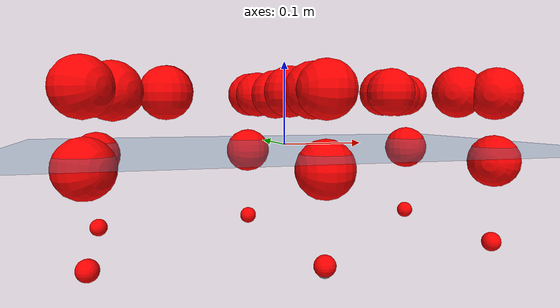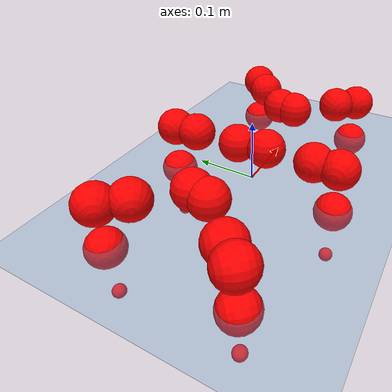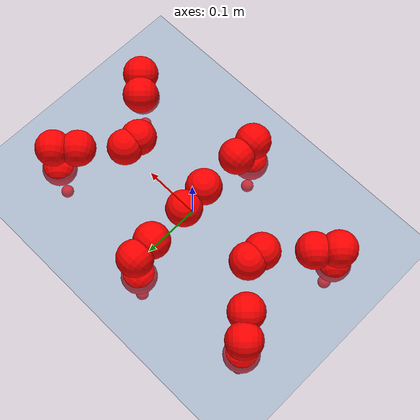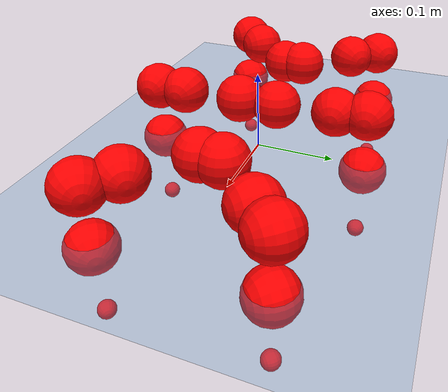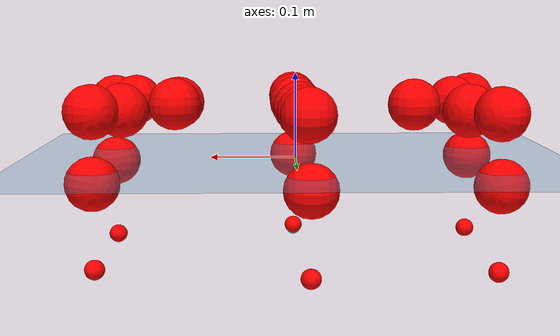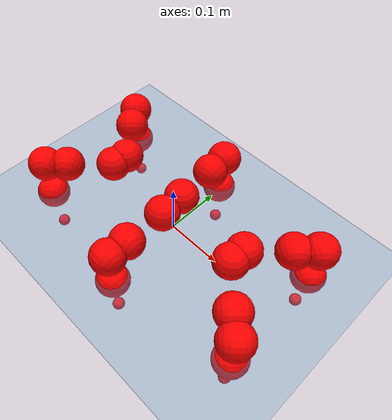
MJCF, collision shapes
<mujoco model="Golem">
  <compiler angle="radian" assetdir="assets" balanceinertia="true" inertiafromgeom="false"/>

  <option timestep="0.005" density="1.2" viscosity="2e-05"/>

  <size nkey="1"/>

  <visual>
    <quality shadowsize="8192"/>
    <map shadowclip="0.5"/>
  </visual>

  <default>
    <default class="/">
      <joint armature="0.01" damping="0.01" frictionloss="0.01"/>
      <geom contype="0" conaffinity="0" group="1" solref="-1000 -80"/>
      <site size="0.01 0.005 0.005" group="5"/>
      <general forcelimited="true" biastype="affine" gainprm="25" biasprm="0 -25 -0.5"/>
      <default class="visual">
        <geom type="mesh" group="2"/>
      </default>
      <default class="collision">
        <geom group="3"/>
      </default>
      <default class="foot">
        <geom size="0.01 0 0" condim="6" group="4" priority="1" solimp="0.015 1 0.01"/>
      </default>
      <default class="reward_collision_sphere">
        <geom group="5" rgba="1 0 0 1"/>
      </default>
    </default>
  </default>

  <asset>
    <texture type="skybox" colorspace="auto" name="//unnamed_texture_0" builtin="gradient" rgb1="0.95 0.95 0.95" rgb2="0.95 0.95 0.95" width="100" height="600"/>
    <texture type="2d" colorspace="auto" name="texplane" builtin="checker" rgb1="0.345 0.575 0.748" rgb2="0.345 0.575 0.748" markrgb="1 1 1" width="512" height="512"/>
    <material name="MatPlane" class="/" texture="texplane" texuniform="true" texrepeat="2 2" specular="0.9"/>
    <mesh name="body" class="/" file="body.stl" scale="0.001 0.001 0.001"/>
    <mesh name="coxa" class="/" file="coxa.stl" scale="0.001 0.001 0.001"/>
    <mesh name="femur" class="/" file="femur.stl" scale="0.001 0.001 0.001"/>
    <mesh name="tibia" class="/" file="tibia.stl" scale="0.001 0.001 0.001"/>
    <mesh name="tarsus" class="/" file="tarsus.stl" scale="0.001 0.001 0.001"/>
  </asset>

  <worldbody>
    <geom name="floor" class="/" size="100 100 0.125" type="plane" group="0" material="MatPlane"/>
    <light name="toplight_shadow" class="/" pos="0 0 5" dir="0.0990148 0.0990148 -0.990148" type="directional" ambient="0.04 0.04 0.04" diffuse="0.55 0.55 0.55" specular="0.12 0.12 0.12"/>
    <light name="toplight_fill" class="/" pos="0 0 5" dir="0.0990148 0.0990148 -0.990148" type="directional" castshadow="false" ambient="0.04 0.04 0.04" diffuse="0.3 0.3 0.3" specular="0.08 0.08 0.08"/>
    <body name="trunk" pos="-0.000308961 0.000275274 -0.00100893" quat="0.999999 0.000605176 -0.00106942 0.000419429">
      <inertial pos="-0.00030465 -0.00112767 -0.00276687" quat="1 -3.67446e-05 1.89607e-05 -7.4894e-05" mass="1.6659" diaginertia="0.00558646 7.96888e-05 0.00984482"/>
      <joint name="//unnamed_joint_0" type="free"/>
      <geom name="//unnamed_geom_1" class="/" pos="0 0 0.0639518" quat="1 0 0 0" type="mesh" rgba="0.9 0.9 0.9 1" mesh="body"/>
      <site name="imu" class="/" pos="0.129362 -0.00660002 0.0998537" size="0.00757989"/>
      <camera name="track" class="/" pos="0 -0.764628 0" quat="0.707107 0.707107 0 0" mode="trackcom"/>
      <camera name="ego_camera" class="/" pos="0.116013 0 0.0999246" quat="-0.5 -0.5 0.5 0.5"/>
      <body name="coxa_RR" pos="-0.160258 -0.0304239 0.0624498" quat="0.383432 0.000897532 0.000502845 -0.923568">
        <inertial pos="0.000439454 -0.000433604 0.00281834" quat="0.999962 -0.00113672 0.000420955 -0.00865164" mass="0.0909213" diaginertia="0.00584979 8.46167e-05 0.0101914"/>
        <joint name="coxa_joint_RR" class="/" pos="0 0 0" axis="-0.000561421 0.000291466 -1" range="-3.18572 3.08491" armature="0.00760991" damping="0.0110894" frictionloss="0.00810919"/>
        <geom name="//unnamed_geom_2" class="/" type="mesh" rgba="0.2 0.2 0.2 1" mesh="coxa"/>
        <geom name="//unnamed_geom_3" class="reward_collision_sphere" size="0.0303196" pos="-0.0267722 0 0"/>
        <body name="femur_RR" pos="0.0547674 0.00140461 2.39403e-05" quat="0.500325 -0.499915 0.50018 0.499579">
          <inertial pos="0.000127787 -0.000636656 0.0012214" quat="1 0.000221574 -0.000278407 -0.000193298" mass="0.0871868" diaginertia="0.00567828 8.23245e-05 0.0100015"/>
          <joint name="femur_joint_RR" class="/" pos="0 0 0" axis="-0.000355548 0.00455185 -0.99999" range="-3.08616 3.14782" armature="0.00654838" damping="0" frictionloss="0.00783389"/>
          <geom name="//unnamed_geom_4" class="/" type="mesh" rgba="0.9 0.9 0.9 1" mesh="femur"/>
          <geom name="//unnamed_geom_5" class="reward_collision_sphere" size="0.0303196"/>
          <body name="tibia_RR" pos="-0.0025066 -0.0390953 0.00174201" quat="0.000561855 0.999999 -0.000424036 0.000739226">
            <inertial pos="0.00248469 0.00164182 -0.000324653" quat="1 1.93158e-05 5.3148e-05 8.14222e-06" mass="0.0898924" diaginertia="0.00570758 8.21418e-05 0.00966058"/>
            <joint name="tibia_joint_RR" class="/" pos="0 0 0" axis="0.00917617 -0.0092809 0.999915" range="-3.08587 3.14709" armature="0.00670575" damping="0" frictionloss="0.00793045"/>
            <geom name="//unnamed_geom_6" class="/" type="mesh" rgba="0.2 0.2 0.2 1" mesh="tibia"/>
            <geom name="//unnamed_geom_7" class="reward_collision_sphere" size="0.0303196"/>
            <body name="tarsus_RR" pos="0.0756806 0.00150474 -0.00179791" quat="1 -7.44661e-06 -3.18181e-05 -1.34137e-05">
              <inertial pos="0.0524621 0.001252 -0.00135294" quat="0.501725 0.500919 0.498293 0.499055" mass="0.0891656" diaginertia="0.00578751 8.14357e-05 0.0102934"/>
              <joint name="tarsus_joint_RR" class="/" pos="0 0 0" axis="-0.00790204 -0.00790066 0.999938" range="-3.15 3.15458" armature="0.00801654" damping="0" frictionloss="0.00718745"/>
              <geom name="//unnamed_geom_8" class="/" type="mesh" rgba="0.9 0.9 0.9 1" mesh="tarsus"/>
              <geom name="foot_1" class="foot" size="0.00736412" pos="0.0999497 0 0" quat="0 -0.707107 0 0.707107"/>
              <geom name="//unnamed_geom_10" class="reward_collision_sphere" size="0.0303196"/>
              <geom name="//unnamed_geom_11" class="reward_collision_sphere" size="0.0113698" pos="0.0959339 0 0"/>
              <site name="foot_1" class="foot" pos="0.0999497 0 0" quat="0 -0.707107 0 0.707107" size="0.00757989"/>
            </body>
          </body>
        </body>
      </body>
      <body name="coxa_RM" pos="-0.000324074 -0.0518219 0.0644854" quat="0.707392 -0.000182933 0.00129697 -0.70682">
        <inertial pos="0.00102739 -0.00245826 0.00121106" quat="1 -4.78804e-05 -2.1658e-05 1.35127e-05" mass="0.0851619" diaginertia="0.00552862 8.20757e-05 0.01"/>
        <joint name="coxa_joint_RM" class="/" pos="0 0 0" axis="-0.000535494 -0.0138074 -0.999905" range="-3.13266 3.18756" armature="0.00856013" damping="0" frictionloss="0.00680398"/>
        <geom name="//unnamed_geom_12" class="/" type="mesh" rgba="0.2 0.2 0.2 1" mesh="coxa"/>
        <geom name="//unnamed_geom_13" class="reward_collision_sphere" size="0.0303196" pos="-0.0267722 0 0"/>
        <body name="femur_RM" pos="0.0504828 0.000597763 -0.000902515" quat="0.499958 -0.500104 0.499995 0.499942">
          <inertial pos="0.00163623 -0.00117898 -0.000116247" quat="0.999987 0.000174568 -0.00241193 0.00446742" mass="0.0898733" diaginertia="0.00562082 8.36918e-05 0.0101994"/>
          <joint name="femur_joint_RM" class="/" pos="0 0 0" axis="-0.00113646 5.80495e-06 -0.999999" range="-3.15509 3.12643" armature="0.00748322" damping="0.0106643" frictionloss="0.00828512"/>
          <geom name="//unnamed_geom_14" class="/" type="mesh" rgba="0.9 0.9 0.9 1" mesh="femur"/>
          <geom name="//unnamed_geom_15" class="reward_collision_sphere" size="0.0303196"/>
          <body name="tibia_RM" pos="0.000211736 -0.0391551 0.000266856" quat="-5.75262e-05 1 -0.00032286 6.35564e-05">
            <inertial pos="4.4141e-05 -0.00220032 -0.00265277" quat="0.999919 0.00213625 -0.00407053 0.0118693" mass="0.0873388" diaginertia="0.00588821 8.25638e-05 0.0103435"/>
            <joint name="tibia_joint_RM" class="/" pos="0 0 0" axis="-0.000631953 0.00244863 0.999997" range="-3.16006 3.13413" armature="0.00850673" damping="0.00527063" frictionloss="0.00858074"/>
            <geom name="//unnamed_geom_16" class="/" type="mesh" rgba="0.2 0.2 0.2 1" mesh="tibia"/>
            <geom name="//unnamed_geom_17" class="reward_collision_sphere" size="0.0303196"/>
            <body name="tarsus_RM" pos="0.0779605 0.000173737 0.001173" quat="1 -0.000272565 5.31055e-05 0.000205423">
              <inertial pos="0.0555805 0.000669433 0.000474995" quat="0.493141 0.49817 0.505444 0.503155" mass="0.0860258" diaginertia="0.00571291 8.19505e-05 0.00975216"/>
              <joint name="tarsus_joint_RM" class="/" pos="0 0 0" axis="0.000407865 0.000349507 1" range="-3.08587 3.15324" armature="0.00862345" damping="0.00272659" frictionloss="0.00773327"/>
              <geom name="//unnamed_geom_18" class="/" type="mesh" rgba="0.9 0.9 0.9 1" mesh="tarsus"/>
              <geom name="foot_2" class="foot" size="0.00837948" pos="0.0999497 0 0" quat="0 -0.707107 0 0.707107"/>
              <geom name="//unnamed_geom_20" class="reward_collision_sphere" size="0.0303196"/>
              <geom name="//unnamed_geom_21" class="reward_collision_sphere" size="0.0113698" pos="0.0959339 0 0"/>
              <site name="foot_2" class="foot" pos="0.0999497 0 0" quat="0 -0.707107 0 0.707107" size="0.00757989"/>
            </body>
          </body>
        </body>
      </body>
      <body name="coxa_RF" pos="0.157014 -0.0311486 0.065124" quat="0.923901 0.000179283 -0.000112584 -0.382631">
        <inertial pos="-0.001893 -0.00262844 0.00208414" quat="0.999947 0.00201776 -0.00124836 0.00997008" mass="0.0875369" diaginertia="0.00577749 8.02518e-05 0.00991394"/>
        <joint name="coxa_joint_RF" class="/" pos="0 0 0" axis="-0.00196754 2.17012e-05 -0.999998" stiffness="0.000268212" range="-3.14351 3.19197" armature="0.00698584" damping="0" frictionloss="0.00782942"/>
        <geom name="//unnamed_geom_22" class="/" type="mesh" rgba="0.2 0.2 0.2 1" mesh="coxa"/>
        <geom name="//unnamed_geom_23" class="reward_collision_sphere" size="0.0303196" pos="-0.0267722 0 0"/>
        <body name="femur_RF" pos="0.0554263 -0.00112714 -0.00150486" quat="0.499172 -0.499815 0.500066 0.500945">
          <inertial pos="0.000513195 -0.00241609 0.00276129" quat="0.99991 0.0120155 -0.00303181 0.00505907" mass="0.0880851" diaginertia="0.00554128 7.88618e-05 0.0100843"/>
          <joint name="femur_joint_RF" class="/" pos="0 0 0" axis="-0.000213247 -0.00162535 -0.999999" range="-3.10072 3.13648" armature="0.00732063" damping="0" frictionloss="0.00657294"/>
          <geom name="//unnamed_geom_24" class="/" type="mesh" rgba="0.9 0.9 0.9 1" mesh="femur"/>
          <geom name="//unnamed_geom_25" class="reward_collision_sphere" size="0.0303196"/>
          <body name="tibia_RF" pos="0.00204793 -0.0420496 0.000869242" quat="0.000439478 0.999999 0.000487039 -0.000943077">
            <inertial pos="-0.000365086 0.00154108 7.71832e-05" quat="0.999957 0.00876913 -0.00202968 0.00237241" mass="0.088056" diaginertia="0.00573053 8.22612e-05 0.0101962"/>
            <joint name="tibia_joint_RF" class="/" pos="0 0 0" axis="-0.00091861 0.0116437 0.999932" range="-3.11682 3.13161" armature="0.00771849" damping="0.00191621" frictionloss="0.00758107"/>
            <geom name="//unnamed_geom_26" class="/" type="mesh" rgba="0.2 0.2 0.2 1" mesh="tibia"/>
            <geom name="//unnamed_geom_27" class="reward_collision_sphere" size="0.0303196"/>
            <body name="tarsus_RF" pos="0.0784883 0.000312611 -0.000813354" quat="0.999999 2.93093e-05 0.00136536 0.000137258">
              <inertial pos="0.0508598 7.70658e-05 0.00261642" quat="0.496284 0.502544 0.493578 0.507477" mass="0.0829272" diaginertia="0.00565278 7.98085e-05 0.00966451"/>
              <joint name="tarsus_joint_RF" class="/" pos="0 0 0" axis="0.0113453 0.0100784 0.999885" range="-3.08617 3.11844" armature="0.00763726" damping="0" frictionloss="0.0082801"/>
              <geom name="//unnamed_geom_28" class="/" type="mesh" rgba="0.9 0.9 0.9 1" mesh="tarsus"/>
              <geom name="foot_3" class="foot" size="0.0073767" pos="0.0999497 0 0" quat="0 -0.707107 0 0.707107"/>
              <geom name="//unnamed_geom_30" class="reward_collision_sphere" size="0.0303196"/>
              <geom name="//unnamed_geom_31" class="reward_collision_sphere" size="0.0113698" pos="0.0959339 0 0"/>
              <site name="foot_3" class="foot" pos="0.0999497 0 0" quat="0 -0.707107 0 0.707107" size="0.00757989"/>
            </body>
          </body>
        </body>
      </body>
      <body name="coxa_LR" pos="-0.156485 0.035318 0.0650208" quat="0.383694 -0.000252585 0.000824185 0.92346">
        <inertial pos="0.00299637 0.000436759 -0.000743318" quat="0.999935 0.00115833 0.00885574 -0.00712515" mass="0.0864028" diaginertia="0.00557415 8.13088e-05 0.00991626"/>
        <joint name="coxa_joint_LR" class="/" pos="0 0 0" axis="0.00758096 0.00843396 -0.999936" range="-3.11674 3.1355" armature="0.00757146" damping="0.00632889" frictionloss="0.00743043"/>
        <geom name="//unnamed_geom_32" class="/" type="mesh" rgba="0.2 0.2 0.2 1" mesh="coxa"/>
        <geom name="//unnamed_geom_33" class="reward_collision_sphere" size="0.0303196" pos="-0.0267722 0 0"/>
        <body name="femur_LR" pos="0.0537218 -0.00416024 -0.0012339" quat="0.499901 -0.501111 0.499852 0.499134">
          <inertial pos="-0.000594909 0.000247125 0.000189354" quat="0.999998 -0.00109343 -0.00150199 0.00102541" mass="0.0882667" diaginertia="0.00566385 8.18658e-05 0.0100516"/>
          <joint name="femur_joint_LR" class="/" pos="0 0 0" axis="4.15057e-05 1.06998e-05 1" range="-3.12576 3.19052" armature="0.00764806" damping="0" frictionloss="0.00858099"/>
          <geom name="//unnamed_geom_34" class="/" type="mesh" rgba="0.9 0.9 0.9 1" mesh="femur"/>
          <geom name="//unnamed_geom_35" class="reward_collision_sphere" size="0.0303196"/>
          <body name="tibia_LR" pos="0.000309073 -0.0444602 -0.00424767" quat="-0.000108897 1 -0.000308704 -6.12328e-05">
            <inertial pos="-0.000312943 -0.00184108 0.0020155" quat="0.99999 -0.00446862 0.0004856 -0.000783701" mass="0.0871518" diaginertia="0.00572552 8.48356e-05 0.0101002"/>
            <joint name="tibia_joint_LR" class="/" pos="0 0 0" axis="-0.00352227 0.00169616 -0.999992" range="-3.15503 3.08656" armature="0.00660279" damping="0.00227243" frictionloss="0.00722495"/>
            <geom name="//unnamed_geom_36" class="/" type="mesh" rgba="0.2 0.2 0.2 1" mesh="tibia"/>
            <geom name="//unnamed_geom_37" class="reward_collision_sphere" size="0.0303196"/>
            <body name="tarsus_LR" pos="0.0788252 0.00216854 -0.000204353" quat="1 -6.55881e-05 7.55252e-05 -0.000563952">
              <inertial pos="0.0543184 -0.000215776 0.000792378" quat="0.499043 0.499776 0.498952 0.502221" mass="0.0855954" diaginertia="0.00558518 8.06786e-05 0.00989508"/>
              <joint name="tarsus_joint_LR" class="/" pos="0 0 0" axis="0.000580726 0.00064449 -1" range="-3.08582 3.14082" armature="0.00765948" damping="0" frictionloss="0.00726268"/>
              <geom name="//unnamed_geom_38" class="/" type="mesh" rgba="0.9 0.9 0.9 1" mesh="tarsus"/>
              <geom name="foot_4" class="foot" size="0.0068602" pos="0.0999497 0 0" quat="0.707107 0 -0.707107 0"/>
              <geom name="//unnamed_geom_40" class="reward_collision_sphere" size="0.0303196"/>
              <geom name="//unnamed_geom_41" class="reward_collision_sphere" size="0.0113698" pos="0.0959339 0 0"/>
              <site name="foot_4" class="foot" pos="0.0999497 0 0" quat="0.707107 0 -0.707107 0" size="0.00757989"/>
            </body>
          </body>
        </body>
      </body>
      <body name="coxa_LM" pos="-0.00397989 0.0499724 0.0624976" quat="0.706427 0.00105189 0.000169221 0.707785">
        <inertial pos="0.000466515 1.08344e-05 0.00219636" quat="0.999997 0.00218982 -0.000481529 -6.61056e-05" mass="0.0903753" diaginertia="0.00603531 8.44139e-05 0.0103332"/>
        <joint name="coxa_joint_LM" class="/" pos="0 0 0" axis="0.000552072 0.000594411 -1" stiffness="0.00609874" range="-3.18776 3.15917" armature="0.00681497" damping="0.00383757" frictionloss="0.00846387"/>
        <geom name="//unnamed_geom_42" class="/" type="mesh" rgba="0.2 0.2 0.2 1" mesh="coxa"/>
        <geom name="//unnamed_geom_43" class="reward_collision_sphere" size="0.0303196" pos="-0.0267722 0 0"/>
        <body name="femur_LM" pos="0.0479937 0.00360609 0.00153961" quat="0.500012 -0.500039 0.500001 0.499948">
          <inertial pos="1.33091e-05 -0.00214958 0.000577054" quat="0.999976 -0.00100207 0.00350825 0.00584916" mass="0.0820058" diaginertia="0.00552249 7.95053e-05 0.0096918"/>
          <joint name="femur_joint_LM" class="/" pos="0 0 0" axis="0.00225752 0.00653766 0.999976" range="-3.15974 3.14245" armature="0.00724716" damping="0.00117611" frictionloss="0.00819329"/>
          <geom name="//unnamed_geom_44" class="/" type="mesh" rgba="0.9 0.9 0.9 1" mesh="femur"/>
          <geom name="//unnamed_geom_45" class="reward_collision_sphere" size="0.0303196"/>
          <body name="tibia_LM" pos="-0.000696249 -0.0392109 0.00288306" quat="-0.00019425 1 0.000182793 0.000113602">
            <inertial pos="-0.00264291 0.000715092 -0.000528524" quat="1 -2.01393e-05 5.78786e-05 2.1579e-05" mass="0.0884427" diaginertia="0.0054141 8.11367e-05 0.00980229"/>
            <joint name="tibia_joint_LM" class="/" pos="0 0 0" axis="-6.80909e-05 -2.28749e-05 -1" range="-3.09736 3.14251" armature="0.00755935" damping="0.00133772" frictionloss="0.00713591"/>
            <geom name="//unnamed_geom_46" class="/" type="mesh" rgba="0.2 0.2 0.2 1" mesh="tibia"/>
            <geom name="//unnamed_geom_47" class="reward_collision_sphere" size="0.0303196"/>
            <body name="tarsus_LM" pos="0.0803753 -0.000122455 -0.00279627" quat="1 -0.000115228 1.64676e-05 7.86822e-05">
              <inertial pos="0.0527406 0.000515247 -0.000179543" quat="0.501687 0.499472 0.498556 0.500279" mass="0.0843356" diaginertia="0.0055749 8.07601e-05 0.0101408"/>
              <joint name="tarsus_joint_LM" class="/" pos="0 0 0" axis="0.00686255 0.00700708 -0.999952" range="-3.15439 3.0972" armature="0.00762107" damping="0.0121705" frictionloss="0.00666536"/>
              <geom name="//unnamed_geom_48" class="/" type="mesh" rgba="0.9 0.9 0.9 1" mesh="tarsus"/>
              <geom name="foot_5" class="foot" size="0.00734743" pos="0.0999497 0 0" quat="0.707107 0 -0.707107 0"/>
              <geom name="//unnamed_geom_50" class="reward_collision_sphere" size="0.0303196"/>
              <geom name="//unnamed_geom_51" class="reward_collision_sphere" size="0.0113698" pos="0.0959339 0 0"/>
              <site name="foot_5" class="foot" pos="0.0999497 0 0" quat="0.707107 0 -0.707107 0" size="0.00757989"/>
            </body>
          </body>
        </body>
      </body>
      <body name="coxa_LF" pos="0.15966 0.0345368 0.0655079" quat="0.923705 0.000125656 0.00013036 0.383104">
        <inertial pos="0.000947137 -0.00188614 0.000468609" quat="0.999987 -0.0017985 -0.00442823 -0.00149922" mass="0.0852056" diaginertia="0.00548567 7.68522e-05 0.00971598"/>
        <joint name="coxa_joint_LF" class="/" pos="0 0 0" axis="0.00746045 -0.00648418 -0.999951" range="-3.17693 3.1442" armature="0.007443" damping="0" frictionloss="0.00791231"/>
        <geom name="//unnamed_geom_52" class="/" type="mesh" rgba="0.2 0.2 0.2 1" mesh="coxa"/>
        <geom name="//unnamed_geom_53" class="reward_collision_sphere" size="0.0303196" pos="-0.0267722 0 0"/>
        <body name="femur_LF" pos="0.0508284 0.00159696 -0.0017475" quat="0.500574 -0.499514 0.499996 0.499916">
          <inertial pos="-0.000735157 0.000480441 0.000741686" quat="0.999914 -0.00425625 -0.0112771 -0.00516675" mass="0.0871801" diaginertia="0.0057076 7.89317e-05 0.00977782"/>
          <joint name="femur_joint_LF" class="/" pos="0 0 0" axis="-0.00735241 -0.00681431 0.99995" range="-3.13065 3.12955" armature="0.00761462" damping="0.0063672" frictionloss="0.00660431"/>
          <geom name="//unnamed_geom_54" class="/" type="mesh" rgba="0.9 0.9 0.9 1" mesh="femur"/>
          <geom name="//unnamed_geom_55" class="reward_collision_sphere" size="0.0303196"/>
          <body name="tibia_LF" pos="-0.00105487 -0.0405837 -2.42275e-05" quat="-2.82145e-05 1 -7.26218e-05 -0.000128179">
            <inertial pos="-0.000800678 0.000152295 0.000682029" quat="0.999993 -0.000490599 0.00327202 0.00199276" mass="0.0887726" diaginertia="0.00570004 8.06989e-05 0.00982327"/>
            <joint name="tibia_joint_LF" class="/" pos="0 0 0" axis="0.00851328 0.0044213 -0.999954" stiffness="0.000672355" range="-3.19274 3.14424" armature="0.00793719" damping="0.00886228" frictionloss="0.0068997"/>
            <geom name="//unnamed_geom_56" class="/" type="mesh" rgba="0.2 0.2 0.2 1" mesh="tibia"/>
            <geom name="//unnamed_geom_57" class="reward_collision_sphere" size="0.0303196"/>
            <body name="tarsus_LF" pos="0.0788747 3.64897e-05 0.000840458" quat="1 3.92286e-05 -0.000181581 -3.69812e-05">
              <inertial pos="0.0541024 -0.000230865 0.00277282" quat="0.500881 0.499506 0.498928 0.500682" mass="0.0883658" diaginertia="0.00562066 8.1778e-05 0.0099268"/>
              <joint name="tarsus_joint_LF" class="/" pos="0 0 0" axis="-0.0102303 -0.00845695 -0.999912" stiffness="0.0315316" range="-3.13527 3.16331" armature="0.00745189" damping="0.0241627" frictionloss="0.00731223"/>
              <geom name="//unnamed_geom_58" class="/" type="mesh" rgba="0.9 0.9 0.9 1" mesh="tarsus"/>
              <geom name="foot_6" class="foot" size="0.00755555" pos="0.0999497 0 0" quat="0.707107 0 -0.707107 0"/>
              <geom name="//unnamed_geom_60" class="reward_collision_sphere" size="0.0303196"/>
              <geom name="//unnamed_geom_61" class="reward_collision_sphere" size="0.0113698" pos="0.0959339 0 0"/>
              <site name="foot_6" class="foot" pos="0.0999497 0 0" quat="0.707107 0 -0.707107 0" size="0.00757989"/>
            </body>
          </body>
        </body>
      </body>
    </body>
  </worldbody>

  <contact>
    <pair class="/" geom1="floor" geom2="foot_1" name="//unnamed_contact_0"/>
    <pair class="/" geom1="floor" geom2="foot_2" name="//unnamed_contact_1"/>
    <pair class="/" geom1="floor" geom2="foot_3" name="//unnamed_contact_2"/>
    <pair class="/" geom1="floor" geom2="foot_4" name="//unnamed_contact_3"/>
    <pair class="/" geom1="floor" geom2="foot_5" name="//unnamed_contact_4"/>
    <pair class="/" geom1="floor" geom2="foot_6" name="//unnamed_contact_5"/>
  </contact>

  <actuator>
    <general name="coxa_joint_RR" class="/" joint="coxa_joint_RR" forcerange="-5.96194 5.96194" gainprm="17.3007" biasprm="0 -17.3007 -0.367414"/>
    <general name="femur_joint_RR" class="/" joint="femur_joint_RR" forcerange="-5.57943 5.57943" gainprm="17.3007" biasprm="0 -17.3007 -0.367414"/>
    <general name="tibia_joint_RR" class="/" joint="tibia_joint_RR" forcerange="-5.74391 5.74391" gainprm="17.3007" biasprm="0 -17.3007 -0.367414"/>
    <general name="tarsus_joint_RR" class="/" joint="tarsus_joint_RR" forcerange="-5.31687 5.31687" gainprm="17.3007" biasprm="0 -17.3007 -0.367414"/>
    <general name="coxa_joint_RM" class="/" joint="coxa_joint_RM" forcerange="-5.9737 5.9737" gainprm="17.3007" biasprm="0 -17.3007 -0.367414"/>
    <general name="femur_joint_RM" class="/" joint="femur_joint_RM" forcerange="-6.04861 6.04861" gainprm="17.3007" biasprm="0 -17.3007 -0.367414"/>
    <general name="tibia_joint_RM" class="/" joint="tibia_joint_RM" forcerange="-5.46044 5.46044" gainprm="17.3007" biasprm="0 -17.3007 -0.367414"/>
    <general name="tarsus_joint_RM" class="/" joint="tarsus_joint_RM" forcerange="-6.08388 6.08388" gainprm="17.3007" biasprm="0 -17.3007 -0.367414"/>
    <general name="coxa_joint_RF" class="/" joint="coxa_joint_RF" forcerange="-6.08346 6.08346" gainprm="17.3007" biasprm="0 -17.3007 -0.367414"/>
    <general name="femur_joint_RF" class="/" joint="femur_joint_RF" forcerange="-4.98342 4.98342" gainprm="17.3007" biasprm="0 -17.3007 -0.367414"/>
    <general name="tibia_joint_RF" class="/" joint="tibia_joint_RF" forcerange="-5.5149 5.5149" gainprm="17.3007" biasprm="0 -17.3007 -0.367414"/>
    <general name="tarsus_joint_RF" class="/" joint="tarsus_joint_RF" forcerange="-5.60476 5.60476" gainprm="17.3007" biasprm="0 -17.3007 -0.367414"/>
    <general name="coxa_joint_LR" class="/" joint="coxa_joint_LR" forcerange="-5.68012 5.68012" gainprm="17.3007" biasprm="0 -17.3007 -0.367414"/>
    <general name="femur_joint_LR" class="/" joint="femur_joint_LR" forcerange="-5.13878 5.13878" gainprm="17.3007" biasprm="0 -17.3007 -0.367414"/>
    <general name="tibia_joint_LR" class="/" joint="tibia_joint_LR" forcerange="-5.48851 5.48851" gainprm="17.3007" biasprm="0 -17.3007 -0.367414"/>
    <general name="tarsus_joint_LR" class="/" joint="tarsus_joint_LR" forcerange="-5.67233 5.67233" gainprm="17.3007" biasprm="0 -17.3007 -0.367414"/>
    <general name="coxa_joint_LM" class="/" joint="coxa_joint_LM" forcerange="-5.56663 5.56663" gainprm="17.3007" biasprm="0 -17.3007 -0.367414"/>
    <general name="femur_joint_LM" class="/" joint="femur_joint_LM" forcerange="-5.53265 5.53265" gainprm="17.3007" biasprm="0 -17.3007 -0.367414"/>
    <general name="tibia_joint_LM" class="/" joint="tibia_joint_LM" forcerange="-4.98296 4.98296" gainprm="17.3007" biasprm="0 -17.3007 -0.367414"/>
    <general name="tarsus_joint_LM" class="/" joint="tarsus_joint_LM" forcerange="-5.51088 5.51088" gainprm="17.3007" biasprm="0 -17.3007 -0.367414"/>
    <general name="coxa_joint_LF" class="/" joint="coxa_joint_LF" forcerange="-6.05241 6.05241" gainprm="17.3007" biasprm="0 -17.3007 -0.367414"/>
    <general name="femur_joint_LF" class="/" joint="femur_joint_LF" forcerange="-6.06582 6.06582" gainprm="17.3007" biasprm="0 -17.3007 -0.367414"/>
    <general name="tibia_joint_LF" class="/" joint="tibia_joint_LF" forcerange="-5.46012 5.46012" gainprm="17.3007" biasprm="0 -17.3007 -0.367414"/>
    <general name="tarsus_joint_LF" class="/" joint="tarsus_joint_LF" forcerange="-5.71461 5.71461" gainprm="17.3007" biasprm="0 -17.3007 -0.367414"/>
  </actuator>

  <sensor>
    <gyro site="imu" name="imu_angular_velocity"/>
    <velocimeter site="imu" name="imu_linear_velocity"/>
    <framelinvel objtype="site" objname="foot_1" name="foot_1_global_linear_velocity"/>
    <framelinvel objtype="site" objname="foot_2" name="foot_2_global_linear_velocity"/>
    <framelinvel objtype="site" objname="foot_3" name="foot_3_global_linear_velocity"/>
    <framelinvel objtype="site" objname="foot_4" name="foot_4_global_linear_velocity"/>
    <framelinvel objtype="site" objname="foot_5" name="foot_5_global_linear_velocity"/>
    <framelinvel objtype="site" objname="foot_6" name="foot_6_global_linear_velocity"/>
  </sensor>

  <keyframe>
    <key name="home" qpos="0 0 0.1457 1 0 0 0 0 0 0 0 0 0 0 0 0 0 0 0 0 0 0 0 0 0 0 0 0 0 0 0"/>
  </keyframe>
</mujoco>
